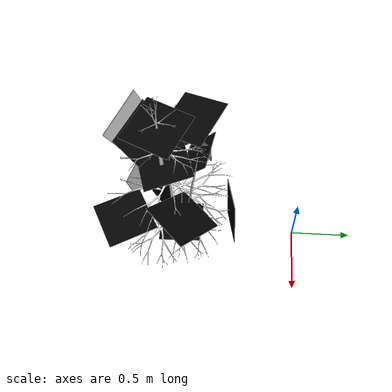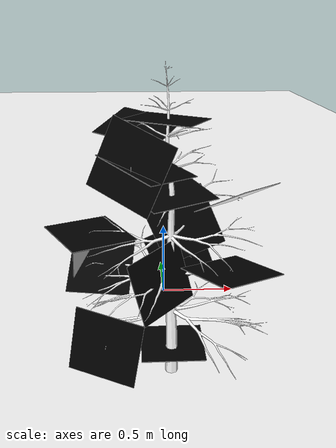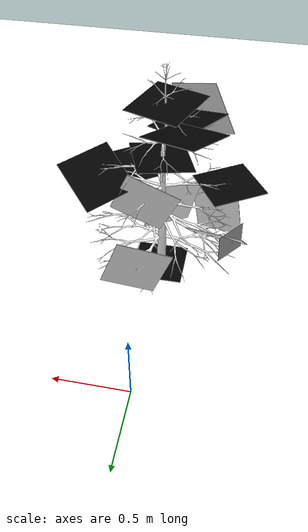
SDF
<?xml version="1.0"?>
<sdf version="1.7">
    <world name="apple_tree_4_marked">

        <plugin filename="gz-sim-physics-system" name="gz::sim::systems::Physics"/>
        <plugin filename="gz-sim-user-commands-system" name="gz::sim::systems::UserCommands"/>
        <plugin filename="gz-sim-scene-broadcaster-system" name="gz::sim::systems::SceneBroadcaster"/>
        <plugin filename="gz-sim-contact-system" name="gz::sim::systems::Contact"/>
        <plugin filename="gz-sim-sensors-system" name="gz::sim::systems::Sensors">
            <render_engine>ogre2</render_engine>
        </plugin>

        <physics type="ode">
            <max_step_size>0.01</max_step_size>
            <real_time_factor>1</real_time_factor>
            <max_contacts>10</max_contacts>
            <real_time_update_rate>1000</real_time_update_rate>
        </physics>

        <gravity>0 0 -9.8</gravity>

        <scene>
            <ambient>0.5 0.5 0.5 1</ambient>
            <background>0.3 0.7 0.9 1</background>
            <grid>false</grid>
            <sky>
                <clouds>
                    <speed>12</speed>
                </clouds>
            </sky>
            <shadows>true</shadows>
        </scene>

        <light name='sun' type='directional'>
            <pose>0 0 10 0 -0 0</pose>
            <cast_shadows>true</cast_shadows>
            <intensity>1</intensity>
            <direction>-0.5 0.1 -0.9</direction>
            <diffuse>0.8 0.8 0.8 1</diffuse>
            <specular>0.2 0.2 0.2 1</specular>
            <attenuation>
                <range>1000</range>
                <linear>0.01</linear>
                <constant>0.90000000000000002</constant>
                <quadratic>0.001</quadratic>
            </attenuation>
            <spot>
                <inner_angle>0</inner_angle>
                <outer_angle>0</outer_angle>
                <falloff>0</falloff>
            </spot>
        </light>

        <!-- Apple tree with crook canker disease -->
        <include>
            <uri>model://apple_tree_4</uri>
            <name>apple_tree_4</name>
            <pose>0 -1.0 0 0 0 1.57</pose>
        </include>

        <!-- Marker 0 (Shepherd's Crook) -->
        <include>
            <uri>model://aruco_marker_0</uri>
            <name>aruco_marker_0</name>
            <pose>-0.470736 -0.797321 0.59069 -1.60848 0 -0.688549</pose>
        </include>

        <include>
            <uri>model://aruco_marker_1</uri>
            <name>aruco_marker_1</name>
            <pose>-0.41799 -1.03906 0.851515 -1.50799 0.023815 0.525407</pose>
        </include>

        <include>
            <uri>model://aruco_marker_2</uri>
            <name>aruco_marker_2</name>
            <pose>0.365161 -0.823709 0.961957 -2.06067 0.067409 0.813417</pose>
        </include>

        <include>
            <uri>model://aruco_marker_3</uri>
            <name>aruco_marker_3</name>
            <pose>0.270576 -1.27655 0.732917 -1.62015 -0.082589 -1.03131</pose>
        </include>

        <include>
            <uri>model://aruco_marker_4</uri>
            <name>aruco_marker_4</name>
            <pose>-0.203402 -1.2422 1.24393 -0.511802 -1.16955 0</pose>
        </include>

        <include>
            <uri>model://aruco_marker_5</uri>
            <name>aruco_marker_5</name>
            <pose>-0.162469 -0.77791 1.34256 -1.33764 0.147696 -0.452218</pose>
        </include>

        <include>
            <uri>model://aruco_marker_6</uri>
            <name>aruco_marker_6</name>
            <pose>0.072187 -0.525679 0.523328 -0.211675 1.21416 -0</pose>
        </include>

        <include>
            <uri>model://aruco_marker_7</uri>
            <name>aruco_marker_7</name>
            <pose>-0.342903 -1.33807 0.368437 -0.196197 -1.40663 -0.135247</pose>
        </include>

        <!-- Marker 1 (Canker) -->
        <include>
            <uri>model://aruco_marker_8</uri>
            <name>aruco_marker_8</name>
            <pose>0.006184 -0.964819 0.152113 -1.52953 0 0</pose>
        </include>

        <include>
            <uri>model://aruco_marker_9</uri>
            <name>aruco_marker_9</name>
            <pose>-0.383816 -0.83137 0.59292 -0.756665 0.015137 -0.157089</pose>
        </include>

        <include>
            <uri>model://aruco_marker_10</uri>
            <name>aruco_marker_10</name>
            <pose>-0.05963 -1.08934 0.594801 -0.154119 -0.192397 0.69448</pose>
        </include>

        <include>
            <uri>model://aruco_marker_11</uri>
            <name>aruco_marker_11</name>
            <pose>0.075931 -0.811136 0.806301 -0.180578 -0.409477 -0</pose>
        </include>

        <include>
            <uri>model://aruco_marker_12</uri>
            <name>aruco_marker_12</name>
            <pose>0.003188 -0.986497 1.03608 -1.4986 -0.089672 0.352829</pose>
        </include>

        <include>
            <uri>model://aruco_marker_13</uri>
            <name>aruco_marker_13</name>
            <pose>-0.12577 -1.13283 1.21847 -1.31576 0.085867 0.853774</pose>
        </include>

        <include>
            <uri>model://aruco_marker_14</uri>
            <name>aruco_marker_14</name>
            <pose>-0.024744 -0.978967 1.41164 -1.52897 0.045277 1.17126</pose>
        </include>
    </world>
</sdf>

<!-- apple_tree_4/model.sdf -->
<sdf version="1.7">
    <model name="apple_tree_4">
        <static>true</static>
        <link name="ground">
        <visual name="ground">
            <geometry>
            <mesh>
                <uri>model://apple_tree_4/meshes/ground.obj</uri>
            </mesh>
            </geometry>
            <material>
            <ambient>0.600 0.600 0.600 1</ambient>
            <diffuse>1.000 1.000 1.000 1</diffuse>
            <specular>0.1 0.1 0.1 1</specular>
            <emissive>0 0 0 1</emissive>
            <pbr>
                <metal>
                <albedo_map>model://apple_tree_4/materials/dirt.jpg</albedo_map>
                <roughness>0.7</roughness>
                <metalness>0.0</metalness>
                </metal>
            </pbr>
            </material>
        </visual>
        <collision name="collision">
            <geometry>
            <mesh>
                <uri>model://apple_tree_4/meshes/ground.obj</uri>
            </mesh>
            </geometry>
            <surface>
            <contact/>
            </surface>
            <laser_retro>0.0</laser_retro>
        </collision>
        </link>
        <link name="apple_tree_4_link">

            <visual name="apple_tree_4_visual">
                <geometry>
                <mesh>
                    <uri>model://apple_tree_4/meshes/apple_tree_4.obj</uri>
                </mesh>
                </geometry>

                <material>
                    <ambient>0.6 0.6 0.6 1</ambient>
                    <diffuse>1 1 1 1</diffuse>
                    <specular>0.1 0.1 0.1 1</specular>
                    <emissive>0 0 0 1</emissive>

                    <pbr>
                        <metal>
                        <!-- Base color -->
                        <albedo_map>model://apple_tree_4/materials/tree_basecolor_baked.png</albedo_map>

                        <!-- Normal map -->
                        <normal_map>model://apple_tree_4/materials/tree_normal_baked.png</normal_map>

                        <!-- Roughness map (preferred) -->
                        <roughness_map>model://apple_tree_4/materials/tree_roughness_baked.png</roughness_map>

                        <!-- For bark -->
                        <metalness>0.0</metalness>

                        <!-- Optional: if your roughness map is missing/ignored, fallback constant -->
                        </metal>
                    </pbr>
                </material>

            </visual>

            <collision name="apple_tree_4_collision">
                <geometry>
                    <mesh>
                        <uri>model://apple_tree_4/meshes/apple_tree_4.obj</uri>
                    </mesh>
                </geometry>
                <surface>
                <contact>
                    <collide_without_contact>true</collide_without_contact>
                    <collide_bitmask>0x00</collide_bitmask>
                </contact>
                </surface>
            </collision>

        </link>
    </model>
</sdf>

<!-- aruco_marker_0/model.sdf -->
<sdf version='1.6'>
  <model name='aruco_marker_0'>
    <link name='link_0'>
      <pose frame=''>0 0 0 0 -0 0</pose>
      <inertial>
        <mass>1</mass>
        <inertia>
          <ixx>0</ixx>
          <ixy>0</ixy>
          <ixz>0</ixz>
          <iyy>0</iyy>
          <iyz>0</iyz>
          <izz>0</izz>
        </inertia>
      </inertial>
      <visual name='visual'>
        <pose frame=''>0 0 0 0 -0 0</pose>
        <geometry>
          <mesh>
            <uri>file://isr-testbed/aruco_marker_0/aruco_marker_0.dae</uri>
            <scale>0.1 0.1 0.1</scale>
          </mesh>
        </geometry>
        <material>
          <lighting>1</lighting>
          <script>
            <uri>file://media/materials/scripts/gazebo.material</uri>
            <name>Gazebo/DepthMapVS</name>
          </script>
          <ambient>0.3 0.3 0.3 1</ambient>
          <diffuse>0.7 0.7 0.7 1</diffuse>
          <specular>0.01 0.01 0.01 1</specular>
          <emissive>0 0 0 1</emissive>
        </material>
        <transparency>0</transparency>
        <cast_shadows>1</cast_shadows>
      </visual>
      <collision name='collision'>
        <laser_retro>0</laser_retro>
        <max_contacts>10</max_contacts>
        <pose frame=''>0 0 0 0 -0 0</pose>
        <geometry>
          <mesh>
            <uri>file://isr-testbed/aruco_marker_0/aruco_marker_0.dae</uri>
            <scale>0.1 0.1 0.1</scale>
          </mesh>
        </geometry>
        <surface>
          <friction>
            <ode>
              <mu>1</mu>
              <mu2>1</mu2>
              <fdir1>0 0 0</fdir1>
              <slip1>0</slip1>
              <slip2>0</slip2>
            </ode>
            <torsional>
              <coefficient>1</coefficient>
              <patch_radius>0</patch_radius>
              <surface_radius>0</surface_radius>
              <use_patch_radius>1</use_patch_radius>
              <ode>
                <slip>0</slip>
              </ode>
            </torsional>
          </friction>
          <bounce>
            <restitution_coefficient>0</restitution_coefficient>
            <threshold>1e+06</threshold>
          </bounce>
          <contact>
            <collide_without_contact>0</collide_without_contact>
            <collide_without_contact_bitmask>1</collide_without_contact_bitmask>
            <collide_bitmask>1</collide_bitmask>
            <ode>
              <soft_cfm>0</soft_cfm>
              <soft_erp>0.2</soft_erp>
              <kp>1e+13</kp>
              <kd>1</kd>
              <max_vel>0.01</max_vel>
              <min_depth>0</min_depth>
            </ode>
            <bullet>
              <split_impulse>1</split_impulse>
              <split_impulse_penetration_threshold>-0.01</split_impulse_penetration_threshold>
              <soft_cfm>0</soft_cfm>
              <soft_erp>0.2</soft_erp>
              <kp>1e+13</kp>
              <kd>1</kd>
            </bullet>
          </contact>
        </surface>
      </collision>
    </link>
    <static>1</static>
    <allow_auto_disable>1</allow_auto_disable>
  </model>
</sdf>

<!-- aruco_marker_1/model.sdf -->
<sdf version="1.9">
  <model name="aruco_marker_1">
    <static>true</static>

    <link name="link">
      <visual name="front">
        <pose>0 0 0 0 0 0</pose>
        <geometry>
          <box>
            <size>0.35 0.002 0.35</size>
          </box>
        </geometry>

        <material>
          <ambient>1 1 1 1</ambient>
          <diffuse>1 1 1 1</diffuse>
          <specular>0.1 0.1 0.1 1</specular>
          <emissive>0 0 0 1</emissive>

          <pbr>
            <metal>
              <albedo_map>
                model://aruco/aruco_marker_1/materials/textures/marker_1.png
              </albedo_map>
              <emissive_map>
                model://aruco/aruco_marker_1/materials/textures/marker_1.png
              </emissive_map>
            </metal>
          </pbr>
        </material>
      </visual>

      <visual name="back">
        <pose>0 -0.002 0 0 0 3.1416</pose>
        <geometry>
          <box>
            <size>0.35 0.002 0.35</size>
          </box>
        </geometry>
        <material>
          <ambient>0 0 0 1</ambient>
          <diffuse>0 0 0 1</diffuse>
        </material>
      </visual>

    </link>

  </model>
</sdf>

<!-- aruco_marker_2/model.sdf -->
<sdf version="1.9">
  <model name="aruco_marker_2">
    <static>true</static>

    <link name="link">
      <visual name="front">
        <pose>0 0 0 0 0 0</pose>
        <geometry>
          <box>
            <size>0.35 0.002 0.35</size>
          </box>
        </geometry>

        <material>
          <ambient>1 1 1 1</ambient>
          <diffuse>1 1 1 1</diffuse>
          <specular>0.1 0.1 0.1 1</specular>
          <emissive>0 0 0 1</emissive>

          <pbr>
            <metal>
              <albedo_map>
                model://aruco/aruco_marker_2/materials/textures/marker_2.png
              </albedo_map>
              <emissive_map>
                model://aruco/aruco_marker_2/materials/textures/marker_2.png
              </emissive_map>
            </metal>
          </pbr>
        </material>
      </visual>

      <visual name="back">
        <pose>0 -0.002 0 0 0 3.1416</pose>
        <geometry>
          <box>
            <size>0.35 0.002 0.35</size>
          </box>
        </geometry>
        <material>
          <ambient>0 0 0 1</ambient>
          <diffuse>0 0 0 1</diffuse>
        </material>
      </visual>

    </link>

  </model>
</sdf>

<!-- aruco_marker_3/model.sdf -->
<sdf version="1.9">
  <model name="aruco_marker_3">
    <static>true</static>

    <link name="link">
      <visual name="front">
        <pose>0 0 0 0 0 0</pose>
        <geometry>
          <box>
            <size>0.35 0.002 0.35</size>
          </box>
        </geometry>

        <material>
          <ambient>1 1 1 1</ambient>
          <diffuse>1 1 1 1</diffuse>
          <specular>0.1 0.1 0.1 1</specular>
          <emissive>0 0 0 1</emissive>

          <pbr>
            <metal>
              <albedo_map>
                model://aruco/aruco_marker_3/materials/textures/marker_3.png
              </albedo_map>
              <emissive_map>
                model://aruco/aruco_marker_3/materials/textures/marker_3.png
              </emissive_map>
            </metal>
          </pbr>
        </material>
      </visual>

      <visual name="back">
        <pose>0 -0.002 0 0 0 3.1416</pose>
        <geometry>
          <box>
            <size>0.35 0.002 0.35</size>
          </box>
        </geometry>
        <material>
          <ambient>0 0 0 1</ambient>
          <diffuse>0 0 0 1</diffuse>
        </material>
      </visual>

    </link>

  </model>
</sdf>

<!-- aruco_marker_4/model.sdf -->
<sdf version="1.9">
  <model name="aruco_marker_4">
    <static>true</static>

    <link name="link">
      <visual name="front">
        <pose>0 0 0 0 0 0</pose>
        <geometry>
          <box>
            <size>0.35 0.002 0.35</size>
          </box>
        </geometry>

        <material>
          <ambient>1 1 1 1</ambient>
          <diffuse>1 1 1 1</diffuse>
          <specular>0.1 0.1 0.1 1</specular>
          <emissive>0 0 0 1</emissive>

          <pbr>
            <metal>
              <albedo_map>
                model://aruco/aruco_marker_4/materials/textures/marker_4.png
              </albedo_map>
              <emissive_map>
                model://aruco/aruco_marker_4/materials/textures/marker_4.png
              </emissive_map>
            </metal>
          </pbr>
        </material>
      </visual>

      <visual name="back">
        <pose>0 -0.002 0 0 0 3.1416</pose>
        <geometry>
          <box>
            <size>0.35 0.002 0.35</size>
          </box>
        </geometry>
        <material>
          <ambient>0 0 0 1</ambient>
          <diffuse>0 0 0 1</diffuse>
        </material>
      </visual>

    </link>

  </model>
</sdf>

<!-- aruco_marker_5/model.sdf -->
<sdf version="1.9">
  <model name="aruco_marker_5">
    <static>true</static>

    <link name="link">
      <visual name="front">
        <pose>0 0 0 0 0 0</pose>
        <geometry>
          <box>
            <size>0.35 0.002 0.35</size>
          </box>
        </geometry>

        <material>
          <ambient>1 1 1 1</ambient>
          <diffuse>1 1 1 1</diffuse>
          <specular>0.1 0.1 0.1 1</specular>
          <emissive>0 0 0 1</emissive>

          <pbr>
            <metal>
              <albedo_map>
                model://aruco/aruco_marker_5/materials/textures/marker_5.png
              </albedo_map>
              <emissive_map>
                model://aruco/aruco_marker_5/materials/textures/marker_5.png
              </emissive_map>
            </metal>
          </pbr>
        </material>
      </visual>

      <visual name="back">
        <pose>0 -0.002 0 0 0 3.1416</pose>
        <geometry>
          <box>
            <size>0.35 0.002 0.35</size>
          </box>
        </geometry>
        <material>
          <ambient>0 0 0 1</ambient>
          <diffuse>0 0 0 1</diffuse>
        </material>
      </visual>

    </link>

  </model>
</sdf>

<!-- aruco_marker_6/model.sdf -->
<sdf version="1.9">
  <model name="aruco_marker_6">
    <static>true</static>

    <link name="link">
      <visual name="front">
        <pose>0 0 0 0 0 0</pose>
        <geometry>
          <box>
            <size>0.35 0.002 0.35</size>
          </box>
        </geometry>

        <material>
          <ambient>1 1 1 1</ambient>
          <diffuse>1 1 1 1</diffuse>
          <specular>0.1 0.1 0.1 1</specular>
          <emissive>0 0 0 1</emissive>

          <pbr>
            <metal>
              <albedo_map>
                model://aruco/aruco_marker_6/materials/textures/marker_6.png
              </albedo_map>
              <emissive_map>
                model://aruco/aruco_marker_6/materials/textures/marker_6.png
              </emissive_map>
            </metal>
          </pbr>
        </material>
      </visual>

      <visual name="back">
        <pose>0 -0.002 0 0 0 3.1416</pose>
        <geometry>
          <box>
            <size>0.35 0.002 0.35</size>
          </box>
        </geometry>
        <material>
          <ambient>0 0 0 1</ambient>
          <diffuse>0 0 0 1</diffuse>
        </material>
      </visual>

    </link>

  </model>
</sdf>

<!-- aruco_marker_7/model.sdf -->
<sdf version="1.9">
  <model name="aruco_marker_7">
    <static>true</static>

    <link name="link">
      <visual name="front">
        <pose>0 0 0 0 0 0</pose>
        <geometry>
          <box>
            <size>0.35 0.002 0.35</size>
          </box>
        </geometry>

        <material>
          <ambient>1 1 1 1</ambient>
          <diffuse>1 1 1 1</diffuse>
          <specular>0.1 0.1 0.1 1</specular>
          <emissive>0 0 0 1</emissive>

          <pbr>
            <metal>
              <albedo_map>
                model://aruco/aruco_marker_7/materials/textures/marker_7.png
              </albedo_map>
              <emissive_map>
                model://aruco/aruco_marker_7/materials/textures/marker_7.png
              </emissive_map>
            </metal>
          </pbr>
        </material>
      </visual>

      <visual name="back">
        <pose>0 -0.002 0 0 0 3.1416</pose>
        <geometry>
          <box>
            <size>0.35 0.002 0.35</size>
          </box>
        </geometry>
        <material>
          <ambient>0 0 0 1</ambient>
          <diffuse>0 0 0 1</diffuse>
        </material>
      </visual>

    </link>

  </model>
</sdf>

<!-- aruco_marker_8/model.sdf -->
<sdf version="1.9">
  <model name="aruco_marker_8">
    <static>true</static>

    <link name="link">
      <visual name="front">
        <pose>0 0 0 0 0 0</pose>
        <geometry>
          <box>
            <size>0.35 0.002 0.35</size>
          </box>
        </geometry>

        <material>
          <ambient>1 1 1 1</ambient>
          <diffuse>1 1 1 1</diffuse>
          <specular>0.1 0.1 0.1 1</specular>
          <emissive>0 0 0 1</emissive>

          <pbr>
            <metal>
              <albedo_map>
                model://aruco/aruco_marker_8/materials/textures/marker_8.png
              </albedo_map>
              <emissive_map>
                model://aruco/aruco_marker_8/materials/textures/marker_8.png
              </emissive_map>
            </metal>
          </pbr>
        </material>
      </visual>

      <visual name="back">
        <pose>0 -0.002 0 0 0 3.1416</pose>
        <geometry>
          <box>
            <size>0.35 0.002 0.35</size>
          </box>
        </geometry>
        <material>
          <ambient>0 0 0 1</ambient>
          <diffuse>0 0 0 1</diffuse>
        </material>
      </visual>

    </link>

  </model>
</sdf>

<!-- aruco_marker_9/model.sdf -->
<sdf version="1.9">
  <model name="aruco_marker_9">
    <static>true</static>

    <link name="link">
      <visual name="front">
        <pose>0 0 0 0 0 0</pose>
        <geometry>
          <box>
            <size>0.35 0.002 0.35</size>
          </box>
        </geometry>

        <material>
          <ambient>1 1 1 1</ambient>
          <diffuse>1 1 1 1</diffuse>
          <specular>0.1 0.1 0.1 1</specular>
          <emissive>0 0 0 1</emissive>

          <pbr>
            <metal>
              <albedo_map>
                model://aruco/aruco_marker_9/materials/textures/marker_9.png
              </albedo_map>
              <emissive_map>
                model://aruco/aruco_marker_9/materials/textures/marker_9.png
              </emissive_map>
            </metal>
          </pbr>
        </material>
      </visual>

      <visual name="back">
        <pose>0 -0.002 0 0 0 3.1416</pose>
        <geometry>
          <box>
            <size>0.35 0.002 0.35</size>
          </box>
        </geometry>
        <material>
          <ambient>0 0 0 1</ambient>
          <diffuse>0 0 0 1</diffuse>
        </material>
      </visual>

    </link>

  </model>
</sdf>

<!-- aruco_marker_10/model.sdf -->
<sdf version="1.9">
  <model name="aruco_marker_10">
    <static>true</static>

    <link name="link">
      <visual name="front">
        <pose>0 0 0 0 0 0</pose>
        <geometry>
          <box>
            <size>0.35 0.002 0.35</size>
          </box>
        </geometry>

        <material>
          <ambient>1 1 1 1</ambient>
          <diffuse>1 1 1 1</diffuse>
          <specular>0.1 0.1 0.1 1</specular>
          <emissive>0 0 0 1</emissive>

          <pbr>
            <metal>
              <albedo_map>
                model://aruco/aruco_marker_10/materials/textures/marker_10.png
              </albedo_map>
              <emissive_map>
                model://aruco/aruco_marker_10/materials/textures/marker_10.png
              </emissive_map>
            </metal>
          </pbr>
        </material>
      </visual>

      <visual name="back">
        <pose>0 -0.002 0 0 0 3.1416</pose>
        <geometry>
          <box>
            <size>0.35 0.002 0.35</size>
          </box>
        </geometry>
        <material>
          <ambient>0 0 0 1</ambient>
          <diffuse>0 0 0 1</diffuse>
        </material>
      </visual>

    </link>

  </model>
</sdf>

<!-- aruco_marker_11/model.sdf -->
<sdf version="1.9">
  <model name="aruco_marker_11">
    <static>true</static>

    <link name="link">
      <visual name="front">
        <pose>0 0 0 0 0 0</pose>
        <geometry>
          <box>
            <size>0.35 0.002 0.35</size>
          </box>
        </geometry>

        <material>
          <ambient>1 1 1 1</ambient>
          <diffuse>1 1 1 1</diffuse>
          <specular>0.1 0.1 0.1 1</specular>
          <emissive>0 0 0 1</emissive>

          <pbr>
            <metal>
              <albedo_map>
                model://aruco/aruco_marker_11/materials/textures/marker_11.png
              </albedo_map>
              <emissive_map>
                model://aruco/aruco_marker_11/materials/textures/marker_11.png
              </emissive_map>
            </metal>
          </pbr>
        </material>
      </visual>

      <visual name="back">
        <pose>0 -0.002 0 0 0 3.1416</pose>
        <geometry>
          <box>
            <size>0.35 0.002 0.35</size>
          </box>
        </geometry>
        <material>
          <ambient>0 0 0 1</ambient>
          <diffuse>0 0 0 1</diffuse>
        </material>
      </visual>

    </link>

  </model>
</sdf>

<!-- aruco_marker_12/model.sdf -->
<sdf version="1.9">
  <model name="aruco_marker_12">
    <static>true</static>

    <link name="link">
      <visual name="front">
        <pose>0 0 0 0 0 0</pose>
        <geometry>
          <box>
            <size>0.35 0.002 0.35</size>
          </box>
        </geometry>

        <material>
          <ambient>1 1 1 1</ambient>
          <diffuse>1 1 1 1</diffuse>
          <specular>0.1 0.1 0.1 1</specular>
          <emissive>0 0 0 1</emissive>

          <pbr>
            <metal>
              <albedo_map>
                model://aruco/aruco_marker_12/materials/textures/marker_12.png
              </albedo_map>
              <emissive_map>
                model://aruco/aruco_marker_12/materials/textures/marker_12.png
              </emissive_map>
            </metal>
          </pbr>
        </material>
      </visual>

      <visual name="back">
        <pose>0 -0.002 0 0 0 3.1416</pose>
        <geometry>
          <box>
            <size>0.35 0.002 0.35</size>
          </box>
        </geometry>
        <material>
          <ambient>0 0 0 1</ambient>
          <diffuse>0 0 0 1</diffuse>
        </material>
      </visual>

    </link>

  </model>
</sdf>

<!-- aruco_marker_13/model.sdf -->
<sdf version="1.9">
  <model name="aruco_marker_13">
    <static>true</static>

    <link name="link">
      <visual name="front">
        <pose>0 0 0 0 0 0</pose>
        <geometry>
          <box>
            <size>0.35 0.002 0.35</size>
          </box>
        </geometry>

        <material>
          <ambient>1 1 1 1</ambient>
          <diffuse>1 1 1 1</diffuse>
          <specular>0.1 0.1 0.1 1</specular>
          <emissive>0 0 0 1</emissive>

          <pbr>
            <metal>
              <albedo_map>
                model://aruco/aruco_marker_13/materials/textures/marker_13.png
              </albedo_map>
              <emissive_map>
                model://aruco/aruco_marker_13/materials/textures/marker_13.png
              </emissive_map>
            </metal>
          </pbr>
        </material>
      </visual>

      <visual name="back">
        <pose>0 -0.002 0 0 0 3.1416</pose>
        <geometry>
          <box>
            <size>0.35 0.002 0.35</size>
          </box>
        </geometry>
        <material>
          <ambient>0 0 0 1</ambient>
          <diffuse>0 0 0 1</diffuse>
        </material>
      </visual>

    </link>

  </model>
</sdf>

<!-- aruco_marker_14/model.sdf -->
<sdf version="1.9">
  <model name="aruco_marker_14">
    <static>true</static>

    <link name="link">
      <visual name="front">
        <pose>0 0 0 0 0 0</pose>
        <geometry>
          <box>
            <size>0.35 0.002 0.35</size>
          </box>
        </geometry>

        <material>
          <ambient>1 1 1 1</ambient>
          <diffuse>1 1 1 1</diffuse>
          <specular>0.1 0.1 0.1 1</specular>
          <emissive>0 0 0 1</emissive>

          <pbr>
            <metal>
              <albedo_map>
                model://aruco/aruco_marker_14/materials/textures/marker_14.png
              </albedo_map>
              <emissive_map>
                model://aruco/aruco_marker_14/materials/textures/marker_14.png
              </emissive_map>
            </metal>
          </pbr>
        </material>
      </visual>

      <visual name="back">
        <pose>0 -0.002 0 0 0 3.1416</pose>
        <geometry>
          <box>
            <size>0.35 0.002 0.35</size>
          </box>
        </geometry>
        <material>
          <ambient>0 0 0 1</ambient>
          <diffuse>0 0 0 1</diffuse>
        </material>
      </visual>

    </link>

  </model>
</sdf>
